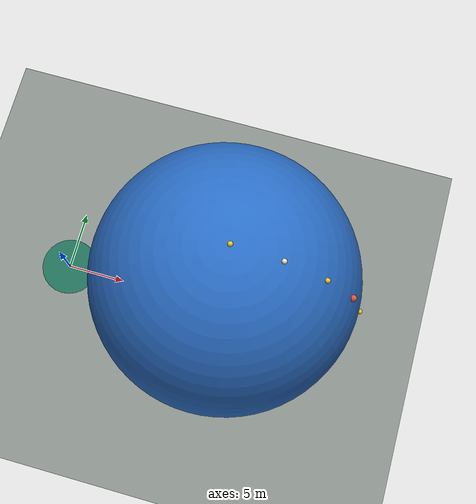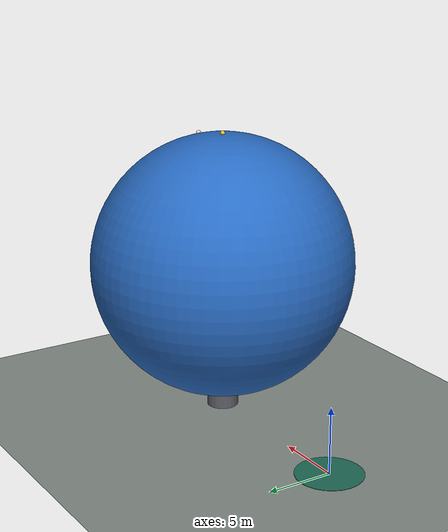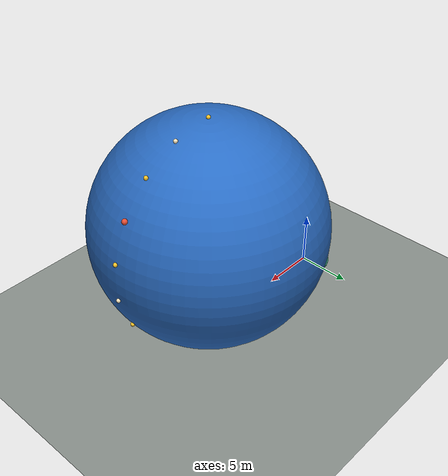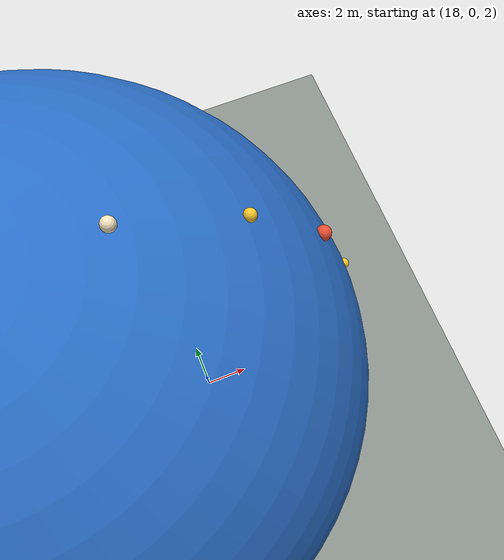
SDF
<?xml version="1.0" encoding="UTF-8"?>
<sdf version="1.9">
  <world name="hnuter_sphere">
    <physics type="ode">
      <max_step_size>0.004</max_step_size>
      <real_time_factor>1.0</real_time_factor>
      <real_time_update_rate>250</real_time_update_rate>
    </physics>
    <gravity>0 0 -9.8</gravity>
    <magnetic_field>6e-06 2.3e-05 -4.2e-05</magnetic_field>
    <atmosphere type="adiabatic"/>

    <scene>
      <grid>true</grid>
      <ambient>0.48 0.48 0.50 1</ambient>
      <background>0.66 0.72 0.80 1</background>
      <shadows>true</shadows>
    </scene>

    <model name="ground_plane">
      <static>true</static>
      <link name="link">
        <collision name="collision">
          <geometry>
            <plane>
              <normal>0 0 1</normal>
              <size>1 1</size>
            </plane>
          </geometry>
          <surface>
            <friction>
              <ode>
                <mu>1.0</mu>
                <mu2>1.0</mu2>
              </ode>
            </friction>
          </surface>
        </collision>
        <visual name="visual">
          <geometry>
            <plane>
              <normal>0 0 1</normal>
              <size>100 100</size>
            </plane>
          </geometry>
          <material>
            <ambient>0.52 0.55 0.53 1</ambient>
            <diffuse>0.52 0.55 0.53 1</diffuse>
            <specular>0.18 0.18 0.18 1</specular>
          </material>
        </visual>
      </link>
    </model>

    <model name="start_pad">
      <static>true</static>
      <pose>0 0 0.015 0 0 0</pose>
      <link name="link">
        <visual name="visual">
          <geometry><cylinder><radius>2.5</radius><length>0.03</length></cylinder></geometry>
          <material>
            <ambient>0.12 0.42 0.34 1</ambient>
            <diffuse>0.12 0.42 0.34 1</diffuse>
          </material>
        </visual>
      </link>
    </model>

    <!-- The controller commands its origin 0.10 m inside the sphere for contact preload. -->
    <model name="giant_sphere">
      <static>true</static>
      <pose>14 0 11.5 0 0 0</pose>
      <link name="sphere">
        <collision name="collision">
          <geometry><sphere><radius>10.0</radius></sphere></geometry>
          <surface>
            <friction>
              <ode>
                <mu>0.02</mu>
                <mu2>0.02</mu2>
              </ode>
            </friction>
            <bounce>
              <restitution_coefficient>0.0</restitution_coefficient>
              <threshold>0.2</threshold>
            </bounce>
          </surface>
        </collision>
        <visual name="visual">
          <geometry>
            <mesh>
              <uri>meshes/hnuter_sphere_smooth.obj</uri>
            </mesh>
          </geometry>
          <material>
            <ambient>0.13 0.34 0.62 1</ambient>
            <diffuse>0.16 0.42 0.76 1</diffuse>
            <specular>0.38 0.38 0.42 1</specular>
          </material>
        </visual>
      </link>
    </model>

    <model name="sphere_pedestal">
      <static>true</static>
      <pose>14 0 0.75 0 0 0</pose>
      <link name="link">
        <collision name="collision">
          <geometry><cylinder><radius>1.2</radius><length>1.5</length></cylinder></geometry>
        </collision>
        <visual name="visual">
          <geometry><cylinder><radius>1.2</radius><length>1.5</length></cylinder></geometry>
          <material>
            <ambient>0.30 0.31 0.34 1</ambient>
            <diffuse>0.34 0.35 0.38 1</diffuse>
          </material>
        </visual>
      </link>
    </model>

    <!-- Markers follow the commanded upper-surface great-circle path. -->
    <model name="surface_path_markers">
      <static>true</static>
      <pose>14 0 11.5 0 0 0</pose>
      <link name="marker_01">
        <pose>0 0 10.06 0 0 0</pose>
        <visual name="visual">
          <geometry><sphere><radius>0.18</radius></sphere></geometry>
          <material><ambient>0.95 0.76 0.16 1</ambient><diffuse>0.95 0.76 0.16 1</diffuse></material>
        </visual>
      </link>
      <link name="marker_02">
        <pose>3.441 0 9.453 0 0 0</pose>
        <visual name="visual">
          <geometry><sphere><radius>0.18</radius></sphere></geometry>
          <material><ambient>0.94 0.88 0.74 1</ambient><diffuse>0.94 0.88 0.74 1</diffuse></material>
        </visual>
      </link>
      <link name="marker_03">
        <pose>6.467 0 7.706 0 0 0</pose>
        <visual name="visual">
          <geometry><sphere><radius>0.18</radius></sphere></geometry>
          <material><ambient>0.95 0.76 0.16 1</ambient><diffuse>0.95 0.76 0.16 1</diffuse></material>
        </visual>
      </link>
      <link name="marker_04">
        <pose>8.712 0 5.03 0 0 0</pose>
        <visual name="visual">
          <geometry><sphere><radius>0.24</radius></sphere></geometry>
          <material><ambient>0.90 0.30 0.20 1</ambient><diffuse>0.90 0.30 0.20 1</diffuse></material>
        </visual>
      </link>
      <link name="marker_05">
        <pose>9.907 0 1.747 0 0 0</pose>
        <visual name="visual">
          <geometry><sphere><radius>0.18</radius></sphere></geometry>
          <material><ambient>0.95 0.76 0.16 1</ambient><diffuse>0.95 0.76 0.16 1</diffuse></material>
        </visual>
      </link>
      <link name="marker_06">
        <pose>9.907 0 -1.747 0 0 0</pose>
        <visual name="visual">
          <geometry><sphere><radius>0.18</radius></sphere></geometry>
          <material><ambient>0.94 0.88 0.74 1</ambient><diffuse>0.94 0.88 0.74 1</diffuse></material>
        </visual>
      </link>
      <link name="marker_07">
        <pose>8.712 0 -5.03 0 0 0</pose>
        <visual name="visual">
          <geometry><sphere><radius>0.18</radius></sphere></geometry>
          <material><ambient>0.95 0.76 0.16 1</ambient><diffuse>0.95 0.76 0.16 1</diffuse></material>
        </visual>
      </link>
    </model>

    <light name="sunUTC" type="directional">
      <pose>0 0 500 0 0 0</pose>
      <cast_shadows>true</cast_shadows>
      <intensity>1.1</intensity>
      <direction>-0.25 0.45 -0.86</direction>
      <diffuse>0.92 0.92 0.90 1</diffuse>
      <specular>0.28 0.28 0.28 1</specular>
      <attenuation>
        <range>2000</range>
        <linear>0</linear>
        <constant>1</constant>
        <quadratic>0</quadratic>
      </attenuation>
    </light>

    <spherical_coordinates>
      <surface_model>EARTH_WGS84</surface_model>
      <world_frame_orientation>ENU</world_frame_orientation>
      <latitude_deg>47.397971057728974</latitude_deg>
      <longitude_deg>8.546163739800146</longitude_deg>
      <elevation>0</elevation>
    </spherical_coordinates>
  </world>
</sdf>
